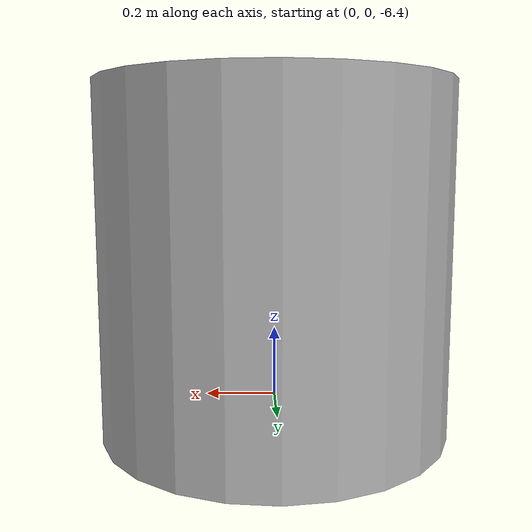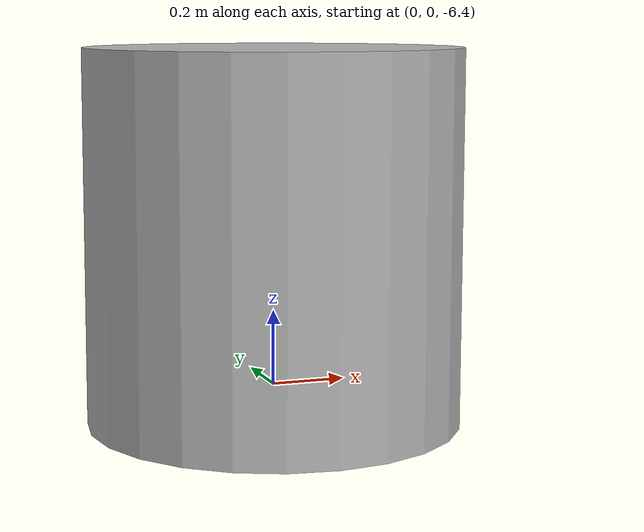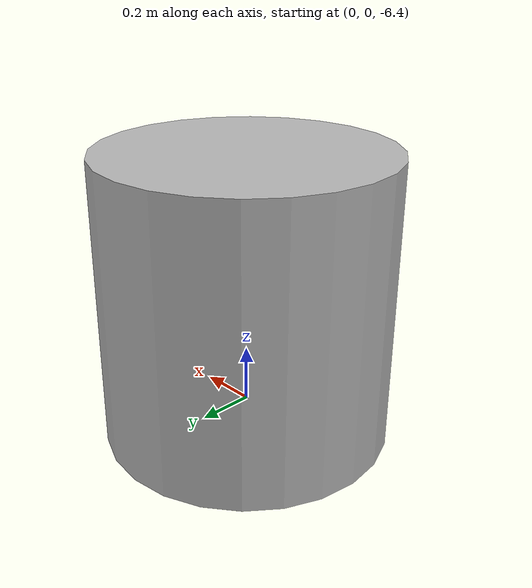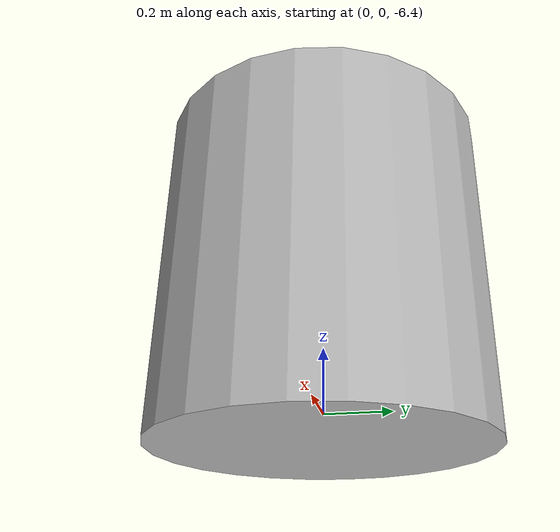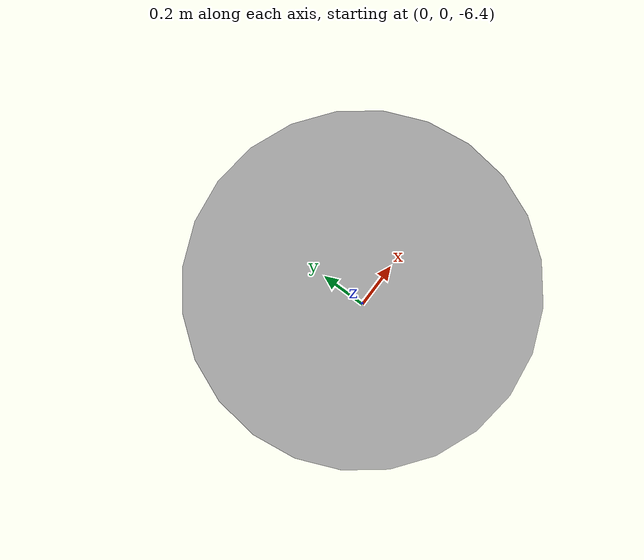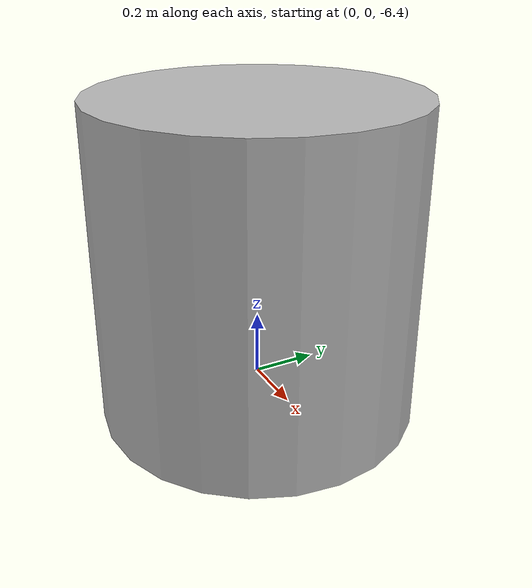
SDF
<?xml version="1.0"?>
<sdf version="1.6">
  <model name="custom_cylinder">
    <pose>0 0 -3 0 0 0</pose>
    <link name="link">
      <collision name="collision">
        <geometry>
          <cylinder>
            <radius>0.5</radius>
            <length>1</length>
          </cylinder>
        </geometry>
      </collision>
      <visual name="visual">
        <pose>0 0 -3 0 0 0</pose>
        <geometry>
          <cylinder>
            <radius>0.5</radius>
            <length>1</length>
          </cylinder>
        </geometry>
        <plugin name="visual_utils" filename="libVisualUtils.so">
          <uid>cylinder_uid</uid>
          <patterns>
            Plugin/flat_
            Plugin/gradient_
            Plugin/chess_
            Plugin/perlin_
          </patterns>
        </plugin>
      </visual>
    </link>
  </model>
</sdf>
